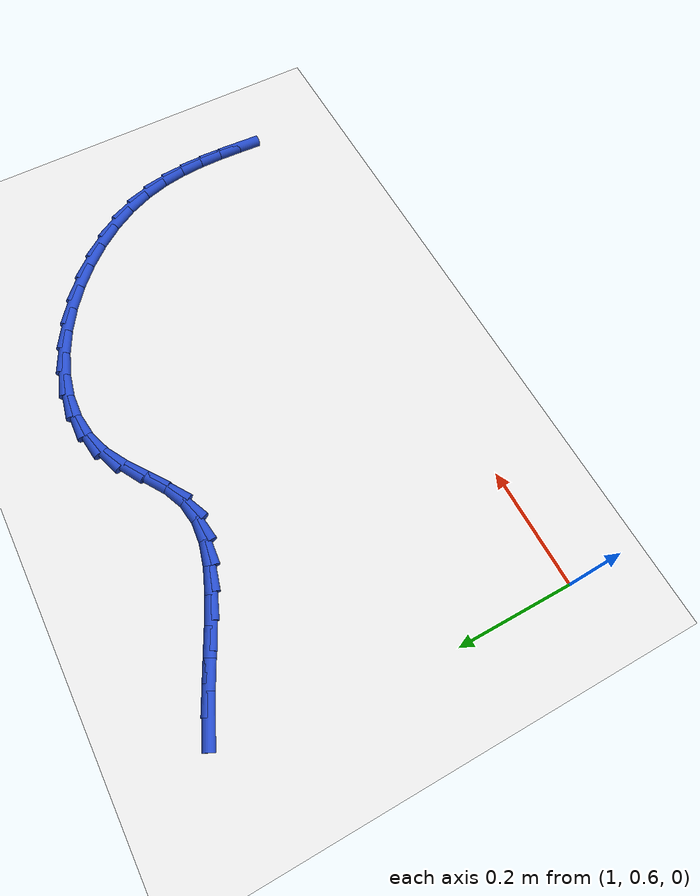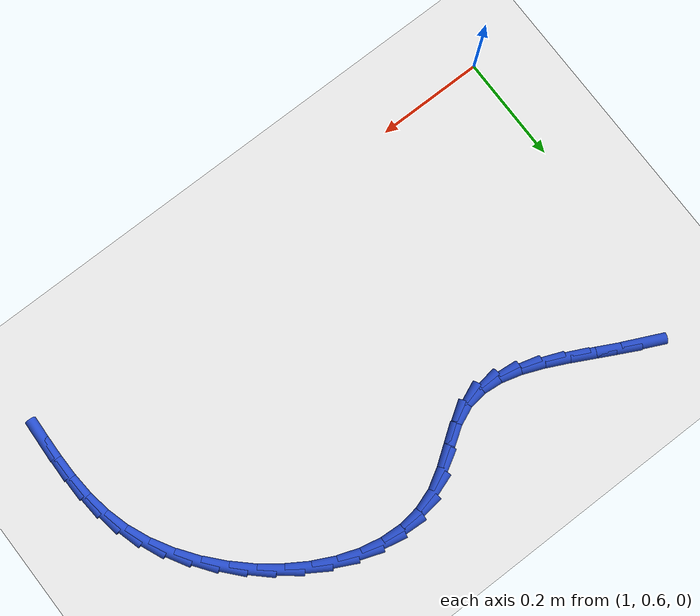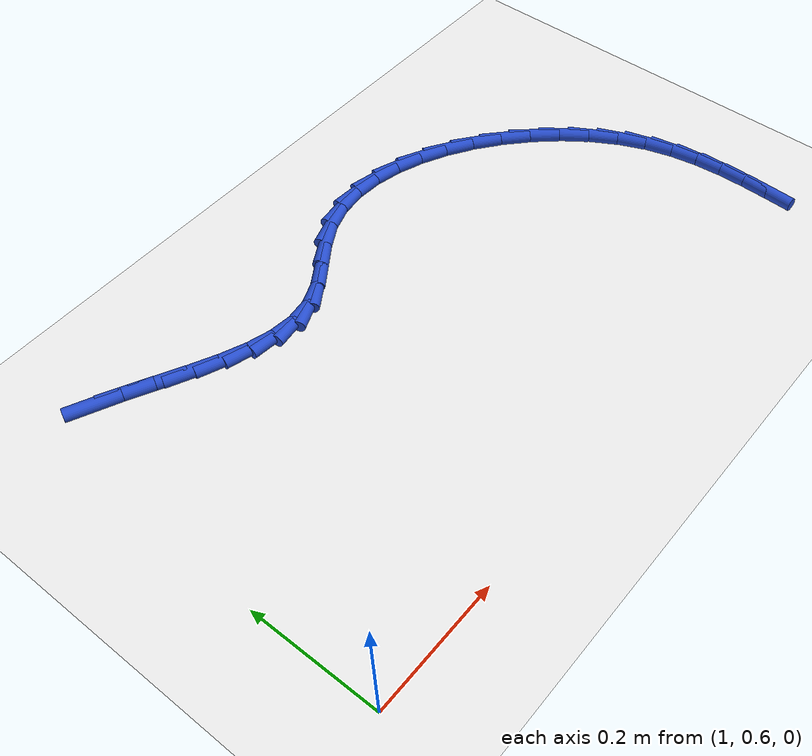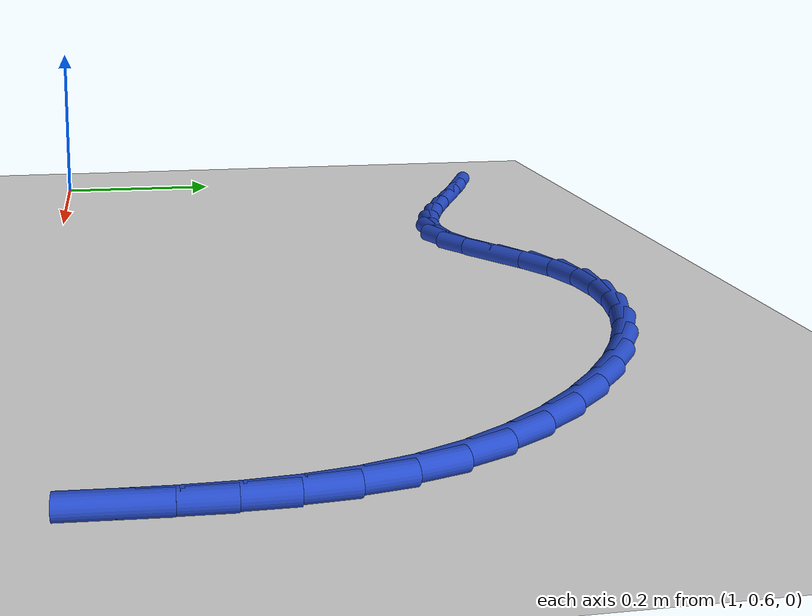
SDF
<sdf version="1.6">
 <world name="default">
  <model name="ground_plane">
   <static>1</static>
   <link name="link">
    <collision name="collision">
     <geometry><plane><normal>0 0 1</normal><size>100 100</size></plane></geometry>
     <surface><friction><ode><mu>100</mu><mu2>50</mu2></ode></friction></surface>
    </collision>
    <visual name="visual">
     <cast_shadows>0</cast_shadows>
     <geometry><plane><normal>0 0 1</normal><size>100 100</size></plane></geometry>
     <material>
      <script><uri>file://media/materials/scripts/gazebo.material</uri><name>Gazebo/WhiteGlow</name></script>
     </material>
    </visual>
   </link>
  </model>
  <model name="line">
   <link name="link_43">
    <pose>1.078871534331477 1.1672446568514878 0.01 0 1.57 -0.4392706588412048</pose>
    <collision name="collision">
     <geometry><cylinder><radius>0.01</radius><length>0.08</length></cylinder></geometry>
    </collision>
    <visual name="visual">
     <material>
      <script><name>Gazebo/Blue</name><uri>file://media/materials/scripts/gazebo.material</uri></script>
     </material>
     <geometry><cylinder><radius>0.01</radius><length>0.08</length></cylinder></geometry>
    </visual>
   </link>
   <link name="link_44">
    <pose>1.1193881970996455 1.148206288472975 0.01 0 1.57 -0.4744880102065574</pose>
    <collision name="collision">
     <geometry><cylinder><radius>0.01</radius><length>0.08</length></cylinder></geometry>
    </collision>
    <visual name="visual">
     <material>
      <script><name>Gazebo/Blue</name><uri>file://media/materials/scripts/gazebo.material</uri></script>
     </material>
     <geometry><cylinder><radius>0.01</radius><length>0.08</length></cylinder></geometry>
    </visual>
   </link>
   <link name="link_45">
    <pose>1.1594281854562136 1.127640754064875 0.01 0 1.57 -0.4779635355873351</pose>
    <collision name="collision">
     <geometry><cylinder><radius>0.01</radius><length>0.08</length></cylinder></geometry>
    </collision>
    <visual name="visual">
     <material>
      <script><name>Gazebo/Blue</name><uri>file://media/materials/scripts/gazebo.material</uri></script>
     </material>
     <geometry><cylinder><radius>0.01</radius><length>0.08</length></cylinder></geometry>
    </visual>
   </link>
   <link name="link_46">
    <pose>1.1988939458496706 1.1071964971002144 0.01 0 1.57 -0.4486386659905812</pose>
    <collision name="collision">
     <geometry><cylinder><radius>0.01</radius><length>0.08</length></cylinder></geometry>
    </collision>
    <visual name="visual">
     <material>
      <script><name>Gazebo/Blue</name><uri>file://media/materials/scripts/gazebo.material</uri></script>
     </material>
     <geometry><cylinder><radius>0.01</radius><length>0.08</length></cylinder></geometry>
    </visual>
   </link>
   <link name="link_47">
    <pose>1.2376879247285058 1.0885219610520214 0.01 0 1.57 -0.38156046901760965</pose>
    <collision name="collision">
     <geometry><cylinder><radius>0.01</radius><length>0.08</length></cylinder></geometry>
    </collision>
    <visual name="visual">
     <material>
      <script><name>Gazebo/Blue</name><uri>file://media/materials/scripts/gazebo.material</uri></script>
     </material>
     <geometry><cylinder><radius>0.01</radius><length>0.08</length></cylinder></geometry>
    </visual>
   </link>
   <link name="link_48">
    <pose>1.2757125685412085 1.0732655893933225 0.01 0 1.57 -0.26765002170741814</pose>
    <collision name="collision">
     <geometry><cylinder><radius>0.01</radius><length>0.08</length></cylinder></geometry>
    </collision>
    <visual name="visual">
     <material>
      <script><name>Gazebo/Blue</name><uri>file://media/materials/scripts/gazebo.material</uri></script>
     </material>
     <geometry><cylinder><radius>0.01</radius><length>0.08</length></cylinder></geometry>
    </visual>
   </link>
   <link name="link_49">
    <pose>1.3128703237362687 1.0630758255971455 0.01 0 1.57 -0.09571093538783415</pose>
    <collision name="collision">
     <geometry><cylinder><radius>0.01</radius><length>0.08</length></cylinder></geometry>
    </collision>
    <visual name="visual">
     <material>
      <script><name>Gazebo/Blue</name><uri>file://media/materials/scripts/gazebo.material</uri></script>
     </material>
     <geometry><cylinder><radius>0.01</radius><length>0.08</length></cylinder></geometry>
    </visual>
   </link>
   <link name="link_50">
    <pose>1.3490636367621747 1.0596011131365182 0.01 0 1.57 0.1382694316180792</pose>
    <collision name="collision">
     <geometry><cylinder><radius>0.01</radius><length>0.08</length></cylinder></geometry>
    </collision>
    <visual name="visual">
     <material>
      <script><name>Gazebo/Blue</name><uri>file://media/materials/scripts/gazebo.material</uri></script>
     </material>
     <geometry><cylinder><radius>0.01</radius><length>0.08</length></cylinder></geometry>
    </visual>
   </link>
   <link name="link_51">
    <pose>1.3841949540674172 1.064489895484467 0.01 0 1.57 0.40752718841273944</pose>
    <collision name="collision">
     <geometry><cylinder><radius>0.01</radius><length>0.08</length></cylinder></geometry>
    </collision>
    <visual name="visual">
     <material>
      <script><name>Gazebo/Blue</name><uri>file://media/materials/scripts/gazebo.material</uri></script>
     </material>
     <geometry><cylinder><radius>0.01</radius><length>0.08</length></cylinder></geometry>
    </visual>
   </link>
   <link name="link_52">
    <pose>1.4182029990907643 1.0791709787108392 0.01 0 1.57 0.5852635851505418</pose>
    <collision name="collision">
     <geometry><cylinder><radius>0.01</radius><length>0.08</length></cylinder></geometry>
    </collision>
    <visual name="visual">
     <material>
      <script><name>Gazebo/Blue</name><uri>file://media/materials/scripts/gazebo.material</uri></script>
     </material>
     <geometry><cylinder><radius>0.01</radius><length>0.08</length></cylinder></geometry>
    </visual>
   </link>
   <link name="link_53">
    <pose>1.4516442380203574 1.1013330732419024 0.01 0 1.57 0.6193305448351575</pose>
    <collision name="collision">
     <geometry><cylinder><radius>0.01</radius><length>0.08</length></cylinder></geometry>
    </collision>
    <visual name="visual">
     <material>
      <script><name>Gazebo/Blue</name><uri>file://media/materials/scripts/gazebo.material</uri></script>
     </material>
     <geometry><cylinder><radius>0.01</radius><length>0.08</length></cylinder></geometry>
    </visual>
   </link>
   <link name="link_54">
    <pose>1.4855921733025157 1.1255345167739434 0.01 0 1.57 0.5274261274436755</pose>
    <collision name="collision">
     <geometry><cylinder><radius>0.01</radius><length>0.08</length></cylinder></geometry>
    </collision>
    <visual name="visual">
     <material>
      <script><name>Gazebo/Blue</name><uri>file://media/materials/scripts/gazebo.material</uri></script>
     </material>
     <geometry><cylinder><radius>0.01</radius><length>0.08</length></cylinder></geometry>
    </visual>
   </link>
   <link name="link_55">
    <pose>1.5211361169980264 1.1462376103949934 0.01 0 1.57 0.32941486308088475</pose>
    <collision name="collision">
     <geometry><cylinder><radius>0.01</radius><length>0.08</length></cylinder></geometry>
    </collision>
    <visual name="visual">
     <material>
      <script><name>Gazebo/Blue</name><uri>file://media/materials/scripts/gazebo.material</uri></script>
     </material>
     <geometry><cylinder><radius>0.01</radius><length>0.08</length></cylinder></geometry>
    </visual>
   </link>
   <link name="link_56">
    <pose>1.5590030541510593 1.1591832260699642 0.01 0 1.57 0.12536663307798723</pose>
    <collision name="collision">
     <geometry><cylinder><radius>0.01</radius><length>0.08</length></cylinder></geometry>
    </collision>
    <visual name="visual">
     <material>
      <script><name>Gazebo/Blue</name><uri>file://media/materials/scripts/gazebo.material</uri></script>
     </material>
     <geometry><cylinder><radius>0.01</radius><length>0.08</length></cylinder></geometry>
    </visual>
   </link>
   <link name="link_57">
    <pose>1.5987632318542278 1.16419410487433 0.01 0 1.57 -0.05576321432500981</pose>
    <collision name="collision">
     <geometry><cylinder><radius>0.01</radius><length>0.08</length></cylinder></geometry>
    </collision>
    <visual name="visual">
     <material>
      <script><name>Gazebo/Blue</name><uri>file://media/materials/scripts/gazebo.material</uri></script>
     </material>
     <geometry><cylinder><radius>0.01</radius><length>0.08</length></cylinder></geometry>
    </visual>
   </link>
   <link name="link_58">
    <pose>1.639756555239835 1.1619058130626727 0.01 0 1.57 -0.2121239494092485</pose>
    <collision name="collision">
     <geometry><cylinder><radius>0.01</radius><length>0.08</length></cylinder></geometry>
    </collision>
    <visual name="visual">
     <material>
      <script><name>Gazebo/Blue</name><uri>file://media/materials/scripts/gazebo.material</uri></script>
     </material>
     <geometry><cylinder><radius>0.01</radius><length>0.08</length></cylinder></geometry>
    </visual>
   </link>
   <link name="link_59">
    <pose>1.681322929440184 1.1529539168895735 0.01 0 1.57 -0.3465663184024586</pose>
    <collision name="collision">
     <geometry><cylinder><radius>0.01</radius><length>0.08</length></cylinder></geometry>
    </collision>
    <visual name="visual">
     <material>
      <script><name>Gazebo/Blue</name><uri>file://media/materials/scripts/gazebo.material</uri></script>
     </material>
     <geometry><cylinder><radius>0.01</radius><length>0.08</length></cylinder></geometry>
    </visual>
   </link>
   <link name="link_60">
    <pose>1.722802259587577 1.1379739826096136 0.01 0 1.57 -0.4637715429724813</pose>
    <collision name="collision">
     <geometry><cylinder><radius>0.01</radius><length>0.08</length></cylinder></geometry>
    </collision>
    <visual name="visual">
     <material>
      <script><name>Gazebo/Blue</name><uri>file://media/materials/scripts/gazebo.material</uri></script>
     </material>
     <geometry><cylinder><radius>0.01</radius><length>0.08</length></cylinder></geometry>
    </visual>
   </link>
   <link name="link_61">
    <pose>1.7635344508143174 1.117601576477375 0.01 0 1.57 -0.5686154358692534</pose>
    <collision name="collision">
     <geometry><cylinder><radius>0.01</radius><length>0.08</length></cylinder></geometry>
    </collision>
    <visual name="visual">
     <material>
      <script><name>Gazebo/Blue</name><uri>file://media/materials/scripts/gazebo.material</uri></script>
     </material>
     <geometry><cylinder><radius>0.01</radius><length>0.08</length></cylinder></geometry>
    </visual>
   </link>
   <link name="link_62">
    <pose>1.8028594082527074 1.0924722647474387 0.01 0 1.57 -0.6655841111695917</pose>
    <collision name="collision">
     <geometry><cylinder><radius>0.01</radius><length>0.08</length></cylinder></geometry>
    </collision>
    <visual name="visual">
     <material>
      <script><name>Gazebo/Blue</name><uri>file://media/materials/scripts/gazebo.material</uri></script>
     </material>
     <geometry><cylinder><radius>0.01</radius><length>0.08</length></cylinder></geometry>
    </visual>
   </link>
   <link name="link_63">
    <pose>1.8401170370350513 1.0632216136743864 0.01 0 1.57 -0.7587377509582555</pose>
    <collision name="collision">
     <geometry><cylinder><radius>0.01</radius><length>0.08</length></cylinder></geometry>
    </collision>
    <visual name="visual">
     <material>
      <script><name>Gazebo/Blue</name><uri>file://media/materials/scripts/gazebo.material</uri></script>
     </material>
     <geometry><cylinder><radius>0.01</radius><length>0.08</length></cylinder></geometry>
    </visual>
   </link>
   <link name="link_64">
    <pose>1.87464724229365 1.0304851895127998 0.01 0 1.57 -0.8518965469132449</pose>
    <collision name="collision">
     <geometry><cylinder><radius>0.01</radius><length>0.08</length></cylinder></geometry>
    </collision>
    <visual name="visual">
     <material>
      <script><name>Gazebo/Blue</name><uri>file://media/materials/scripts/gazebo.material</uri></script>
     </material>
     <geometry><cylinder><radius>0.01</radius><length>0.08</length></cylinder></geometry>
    </visual>
   </link>
   <link name="link_65">
    <pose>1.9057899291608078 0.9948985585172601 0.01 0 1.57 -0.9488992959417957</pose>
    <collision name="collision">
     <geometry><cylinder><radius>0.01</radius><length>0.08</length></cylinder></geometry>
    </collision>
    <visual name="visual">
     <material>
      <script><name>Gazebo/Blue</name><uri>file://media/materials/scripts/gazebo.material</uri></script>
     </material>
     <geometry><cylinder><radius>0.01</radius><length>0.08</length></cylinder></geometry>
    </visual>
   </link>
   <link name="link_66">
    <pose>1.932885002768828 0.9570972869423484 0.01 0 1.57 -1.0538676209637101</pose>
    <collision name="collision">
     <geometry><cylinder><radius>0.01</radius><length>0.08</length></cylinder></geometry>
    </collision>
    <visual name="visual">
     <material>
      <script><name>Gazebo/Blue</name><uri>file://media/materials/scripts/gazebo.material</uri></script>
     </material>
     <geometry><cylinder><radius>0.01</radius><length>0.08</length></cylinder></geometry>
    </visual>
   </link>
   <link name="link_67">
    <pose>1.9552723682500122 0.9177169410426472 0.01 0 1.57 -1.1713651795048605</pose>
    <collision name="collision">
     <geometry><cylinder><radius>0.01</radius><length>0.08</length></cylinder></geometry>
    </collision>
    <visual name="visual">
     <material>
      <script><name>Gazebo/Blue</name><uri>file://media/materials/scripts/gazebo.material</uri></script>
     </material>
     <geometry><cylinder><radius>0.01</radius><length>0.08</length></cylinder></geometry>
    </visual>
   </link>
   <link name="link_68">
    <pose>1.9722942883509875 0.8773923757975108 0.01 0 1.57 -1.2965673860001043</pose>
    <collision name="collision">
     <geometry><cylinder><radius>0.01</radius><length>0.08</length></cylinder></geometry>
    </collision>
    <visual name="visual">
     <material>
      <script><name>Gazebo/Blue</name><uri>file://media/materials/scripts/gazebo.material</uri></script>
     </material>
     <geometry><cylinder><radius>0.01</radius><length>0.08</length></cylinder></geometry>
    </visual>
   </link>
   <link name="link_69">
    <pose>1.9837653652851717 0.8366159447780943 0.01 0 1.57 -1.4072158755614235</pose>
    <collision name="collision">
     <geometry><cylinder><radius>0.01</radius><length>0.08</length></cylinder></geometry>
    </collision>
    <visual name="visual">
     <material>
      <script><name>Gazebo/Blue</name><uri>file://media/materials/scripts/gazebo.material</uri></script>
     </material>
     <geometry><cylinder><radius>0.01</radius><length>0.08</length></cylinder></geometry>
    </visual>
   </link>
   <link name="link_70">
    <pose>1.9905408696688969 0.7955660394090234 0.01 0 1.57 -1.4962992142951839</pose>
    <collision name="collision">
     <geometry><cylinder><radius>0.01</radius><length>0.08</length></cylinder></geometry>
    </collision>
    <visual name="visual">
     <material>
      <script><name>Gazebo/Blue</name><uri>file://media/materials/scripts/gazebo.material</uri></script>
     </material>
     <geometry><cylinder><radius>0.01</radius><length>0.08</length></cylinder></geometry>
    </visual>
   </link>
   <link name="link_71">
    <pose>1.9936148605988815 0.7543791796320427 0.01 0 1.57 -1.5618972984908384</pose>
    <collision name="collision">
     <geometry><cylinder><radius>0.01</radius><length>0.08</length></cylinder></geometry>
    </collision>
    <visual name="visual">
     <material>
      <script><name>Gazebo/Blue</name><uri>file://media/materials/scripts/gazebo.material</uri></script>
     </material>
     <geometry><cylinder><radius>0.01</radius><length>0.08</length></cylinder></geometry>
    </visual>
   </link>
   <link name="link_72">
    <pose>1.993981397171844 0.713191885388899 0.01 0 1.57 1.5379988583110744</pose>
    <collision name="collision">
     <geometry><cylinder><radius>0.01</radius><length>0.08</length></cylinder></geometry>
    </collision>
    <visual name="visual">
     <material>
      <script><name>Gazebo/Blue</name><uri>file://media/materials/scripts/gazebo.material</uri></script>
     </material>
     <geometry><cylinder><radius>0.01</radius><length>0.08</length></cylinder></geometry>
    </visual>
   </link>
   <link name="link_73">
    <pose>1.9926345384845023 0.6721406766213368 0.01 0 1.57 1.520171018071312</pose>
    <collision name="collision">
     <geometry><cylinder><radius>0.01</radius><length>0.08</length></cylinder></geometry>
    </collision>
    <visual name="visual">
     <material>
      <script><name>Gazebo/Blue</name><uri>file://media/materials/scripts/gazebo.material</uri></script>
     </material>
     <geometry><cylinder><radius>0.01</radius><length>0.08</length></cylinder></geometry>
    </visual>
   </link>
  </model>
 </world>
</sdf>
